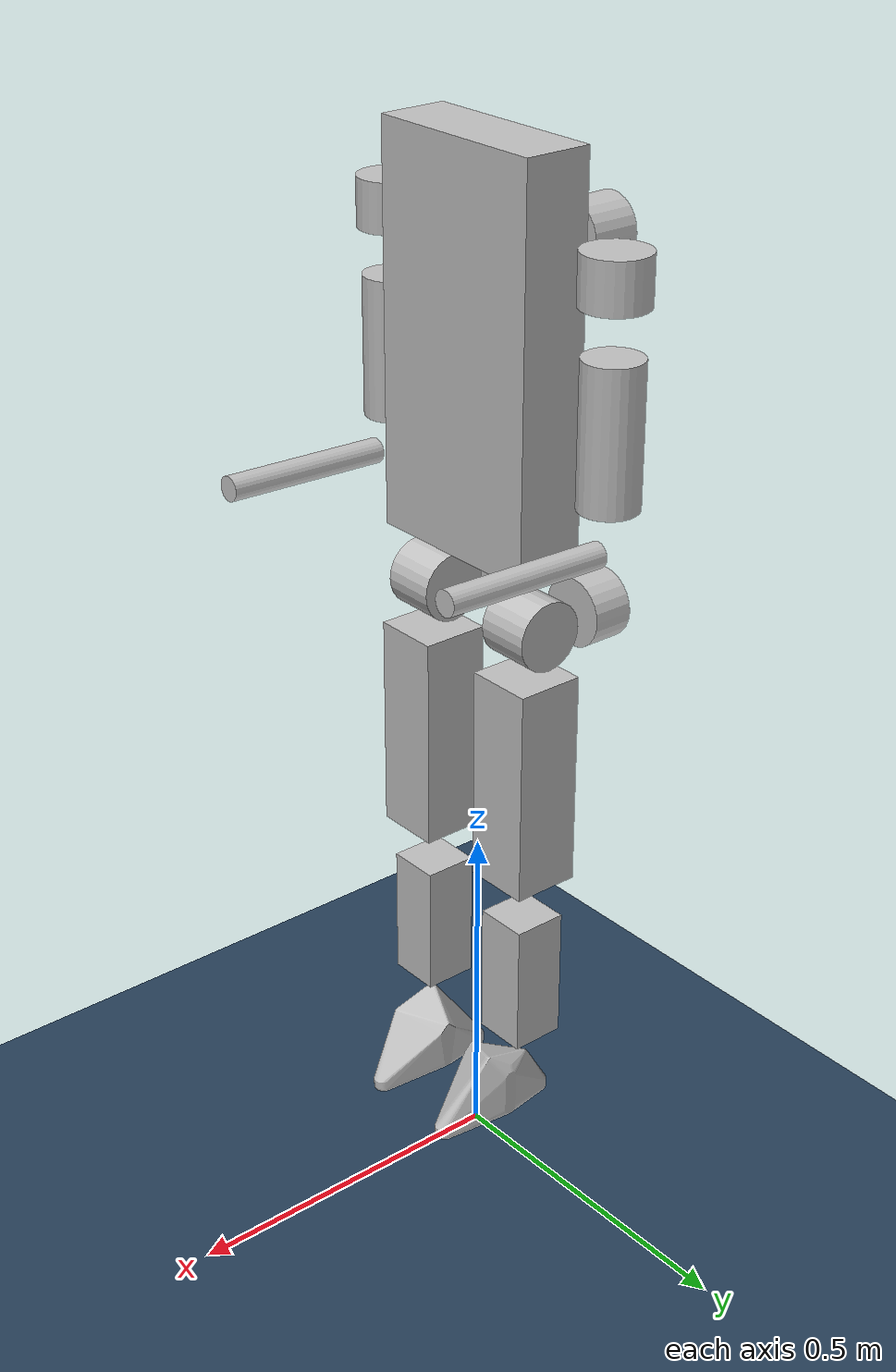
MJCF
<mujoco model="bhr8 scene">
  <include file="bhr8_foot_contact.xml"/>

  <statistic center="1.0 0.7 1.0" extent="0.8"/>

  <option impratio="100000" />

  <visual>
    <headlight diffuse="0.6 0.6 0.6" ambient="0.1 0.1 0.1" specular="0.9 0.9 0.9"/>
    <rgba haze="0.15 0.25 0.35 1"/>
    <global azimuth="-140" elevation="-20"/>
  </visual>

  <asset>
    <texture type="skybox" builtin="flat" rgb1="0 0 0" rgb2="0 0 0" width="512" height="3072"/>
    <texture type="2d" name="groundplane" builtin="checker" mark="edge" rgb1="0.2 0.3 0.4" rgb2="0.1 0.2 0.3" markrgb="0.8 0.8 0.8" width="300" height="300"/>
    <material name="groundplane" texture="groundplane" texuniform="true" texrepeat="5 5" reflectance="0.2"/>
  </asset>

  <worldbody>
    <light pos="1 0 3.5" dir="0 0 -1" directional="true"/>
    <geom name="floor" size="0 0 0.00005" type="plane" material="groundplane"/>
  </worldbody>

</mujoco>

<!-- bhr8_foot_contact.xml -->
<mujoco model="bhr8_fc2">
  <compiler angle="radian" meshdir="meshes/"/>

  <asset>
    <mesh name="rfoot" file="rfoot.stl"/>
    <mesh name="lfoot" file="lfoot.stl"/>
  </asset>

  <worldbody>
  <body name="torso" pos="0 0 1">
      <inertial pos="-0.01 0 0.303214317947705" quat="1 0 0 0" mass="23.1" diaginertia="0.71 0.60 0.24" />
      <joint name="floating_base_joint" type="free" limited="false" actuatorfrclimited="false"/>
    <geom size="0.05 0.14 0.28" pos="0 0 0.25" type="box" rgba="0.752941 0.752941 0.752941 1"/>
    <geom size="0.047 0.035" pos="-0.13625 -0.21476 0.389" quat="0.707388 0 0.706825 0" type="cylinder" rgba="0.752941 0.752941 0.752941 1"/>
    <geom size="0.047 0.035" pos="-0.02525 -0.219 0.389" type="cylinder" rgba="0.752941 0.752941 0.752941 1"/>
    <geom size="0.042 0.1" pos="-0.02625 -0.219 0.189" type="cylinder" rgba="0.752941 0.752941 0.752941 1"/>
    <geom size="0.018 0.125" pos="0.123686 -0.229 0.0401399" quat="0.696707 0 -0.717356 0" type="cylinder" rgba="0.752941 0.752941 0.752941 1"/>
    <geom size="0.047 0.035" pos="-0.13625 0.05476 0.389" quat="0.707388 0 0.706825 0" type="cylinder" rgba="0.752941 0.752941 0.752941 1"/>
    <geom size="0.047 0.035" pos="-0.02525 0.219 0.389" type="cylinder" rgba="0.752941 0.752941 0.752941 1"/>
    <geom size="0.042 0.1" pos="-0.02625 0.219 0.189" type="cylinder" rgba="0.752941 0.752941 0.752941 1"/>
    <geom size="0.018 0.125" pos="0.123686 0.229 0.0401399" quat="0.696707 0 -0.717356 0" type="cylinder" rgba="0.752941 0.752941 0.752941 1"/>
    <body name="rhip1" pos="0 -0.1 0.02324">
      <inertial pos="-0.078509 0 -0.118031" quat="0.312936 0.634303 0.633788 0.313119" mass="2.38958" diaginertia="0.011987 0.0111943 0.00318774"/>
      <joint name="rhipYaw" pos="0 0 0" axis="0 0 1" range="-3.14 3.14" actuatorfrcrange="-100 100"/>
      <geom size="0.05 0.03" pos="-0.11 0 -0.14" quat="0.707388 0 0.706825 0" type="cylinder" rgba="0.752941 0.752941 0.752941 1"/>
      <body name="rhip2" pos="-0.054 0 -0.13924">
        <inertial pos="0.051206 -0.00273 -0.000288" quat="-0.0508471 0.718896 0.0506336 0.691404" mass="2.50709" diaginertia="0.0040419 0.00361648 0.00344663"/>
        <joint name="rhipRoll" pos="0 0 0" axis="1 0 0" range="-3.14 3.14" actuatorfrcrange="-100 100"/>
        <geom size="0.05 0.04" pos="0.05 0 0" quat="0.707388 0.706825 0 0" type="cylinder" rgba="0.752941 0.752941 0.752941 1"/>
        <body name="rthigh" pos="0.055 -0.0001 0">
          <inertial pos="0.005701 -0.002335 -0.170006" quat="0.999478 -0.00792791 -0.00348956 0.0311153" mass="3.09646" diaginertia="0.0430693 0.0409464 0.00582637"/>
          <joint name="rhipPitch" pos="0 0 0" axis="0 1 0" range="-3.14 3.14" actuatorfrcrange="-100 100"/>
          <geom size="0.05 0.05 0.16" pos="0 0 -0.23" type="box" rgba="0.752941 0.752941 0.752941 1"/>
          <body name="rcalf" pos="0 0 -0.375">
            <inertial pos="0.003761 0 -0.143175" quat="0.99988 -0.000702889 -0.0153326 0.00193635" mass="1.91427" diaginertia="0.0176306 0.017018 0.00210037"/>
            <joint name="rknee" pos="0 0 0" axis="0 1 0" range="-3.14 3.14" actuatorfrcrange="-100 100"/>
            <geom size="0.04 0.04 0.1" pos="0 0 -0.18" type="box" rgba="0.752941 0.752941 0.752941 1"/>
            <body name="rankle" pos="0 0 -0.35">
              <inertial pos="-0.025377 0.000124 0.003585" quat="0.501406 0.49859 0.49859 0.501406" mass="0.139581" diaginertia="0.00117 0.00111002 0.000399977"/>
              <joint name="rankle1" pos="0 0 0" axis="0 1 0" range="-3.14 3.14" actuatorfrcrange="-100 100"/>
              <body name="rfoot" pos="0.031 0 0">
                <inertial pos="-0.016884 0.000166 -0.054343" quat="-0.00139322 0.658253 -0.0050555 0.752779" mass="1.20445" diaginertia="0.00652476 0.00619614 0.0011981"/>
                <joint name="rankle2" pos="0 0 0" axis="1 0 0" range="-3.14 3.14" actuatorfrcrange="-100 100"/>
                <geom type="mesh" rgba="0.752941 0.752941 0.752941 1" mesh="rfoot"/>
              </body>
            </body>
          </body>
        </body>
      </body>
    </body>
    <body name="lhip1" pos="0 0.1 0.02324">
      <inertial pos="-0.078509 0 -0.118031" quat="0.312936 0.634303 0.633788 0.313119" mass="2.38958" diaginertia="0.011987 0.0111943 0.00318774"/>
      <joint name="lhipYaw" pos="0 0 0" axis="0 0 1" range="-3.14 3.14" actuatorfrcrange="-100 100"/>
      <geom size="0.05 0.03" pos="-0.11 0 -0.14" quat="0.707388 0 0.706825 0" type="cylinder" rgba="0.752941 0.752941 0.752941 1"/>
      <body name="lhip2" pos="-0.054 0 -0.13924">
        <inertial pos="0.051206 0.002733 -0.00028" quat="0.0501181 0.718914 -0.051553 0.691371" mass="2.50722" diaginertia="0.00404191 0.00361648 0.00344661"/>
        <joint name="lhipRoll" pos="0 0 0" axis="1 0 0" range="-3.14 3.14" actuatorfrcrange="-100 100"/>
        <geom size="0.05 0.04" pos="0.05 0 0" quat="0.707388 0.706825 0 0" type="cylinder" rgba="0.752941 0.752941 0.752941 1"/>
        <body name="lthigh" pos="0.055 0 0">
          <inertial pos="0.004804 0.002343 -0.169952" quat="0.99957 0.00788906 -0.00488581 -0.0278185" mass="3.09646" diaginertia="0.0430607 0.0408405 0.00572671"/>
          <joint name="lhipPitch" pos="0 0 0" axis="0 1 0" range="-3.14 3.14" actuatorfrcrange="-100 100"/>
          <geom size="0.05 0.05 0.16" pos="0 0 -0.23" type="box" rgba="0.752941 0.752941 0.752941 1"/>
          <body name="lcalf" pos="0 0 -0.375">
            <inertial pos="0.003757 -0.00029 -0.143175" quat="0.999882 0.000728441 -0.0153344 0.000562778" mass="1.91427" diaginertia="0.0176306 0.017019 0.00210036"/>
            <joint name="lknee" pos="0 0 0" axis="0 1 0" range="-3.14 3.14" actuatorfrcrange="-100 100"/>
            <geom size="0.04 0.04 0.1" pos="0 0 -0.18" type="box" rgba="0.752941 0.752941 0.752941 1"/>
            <body name="lankle" pos="0 0 -0.35">
              <inertial pos="-0.025377 0.000124 0.003585" quat="0.513827 0.48578 0.48578 0.513827" mass="0.139581" diaginertia="0.000117 0.000111225 3.97754e-05"/>
              <joint name="lankle1" pos="0 0 0" axis="0 1 0" range="-3.14 3.14" actuatorfrcrange="-100 100"/>
              <body name="lfoot" pos="0.031 0 0">
                <inertial pos="-0.016876 -0.000173 -0.054342" quat="0.0024359 0.658246 0.00581857 0.752776" mass="1.20434" diaginertia="0.00652477 0.00619511 0.00119811"/>
                <joint name="lankle2" pos="0 0 0" axis="1 0 0" range="-3.14 3.14" actuatorfrcrange="-100 100"/>
                <geom type="mesh" rgba="0.752941 0.752941 0.752941 1" mesh="lfoot"/>
              </body>
            </body>
          </body>
        </body>
      </body>
    </body>
  </body>
  </worldbody>
  <actuator>
    <motor name="rhipYaw" joint="rhipYaw"/>
    <motor name="rhipRoll" joint="rhipRoll"/>
    <motor name="rhipPitch" joint="rhipPitch"/>
    <motor name="rknee" joint="rknee"/>
    <motor name="rankle1" joint="rankle1"/>
    <motor name="rankle2" joint="rankle2"/>
    <motor name="lhipYaw" joint="lhipYaw"/>
    <motor name="lhipRoll" joint="lhipRoll"/>
    <motor name="lhipPitch" joint="lhipPitch"/>
    <motor name="lknee" joint="lknee"/>
    <motor name="lankle1" joint="lankle1"/>
    <motor name="lankle2" joint="lankle2"/>
  </actuator>

  <contact>
    <exclude body1="rcalf" body2="rfoot"/>
    <exclude body1="lcalf" body2="lfoot"/>
  </contact>
</mujoco>
